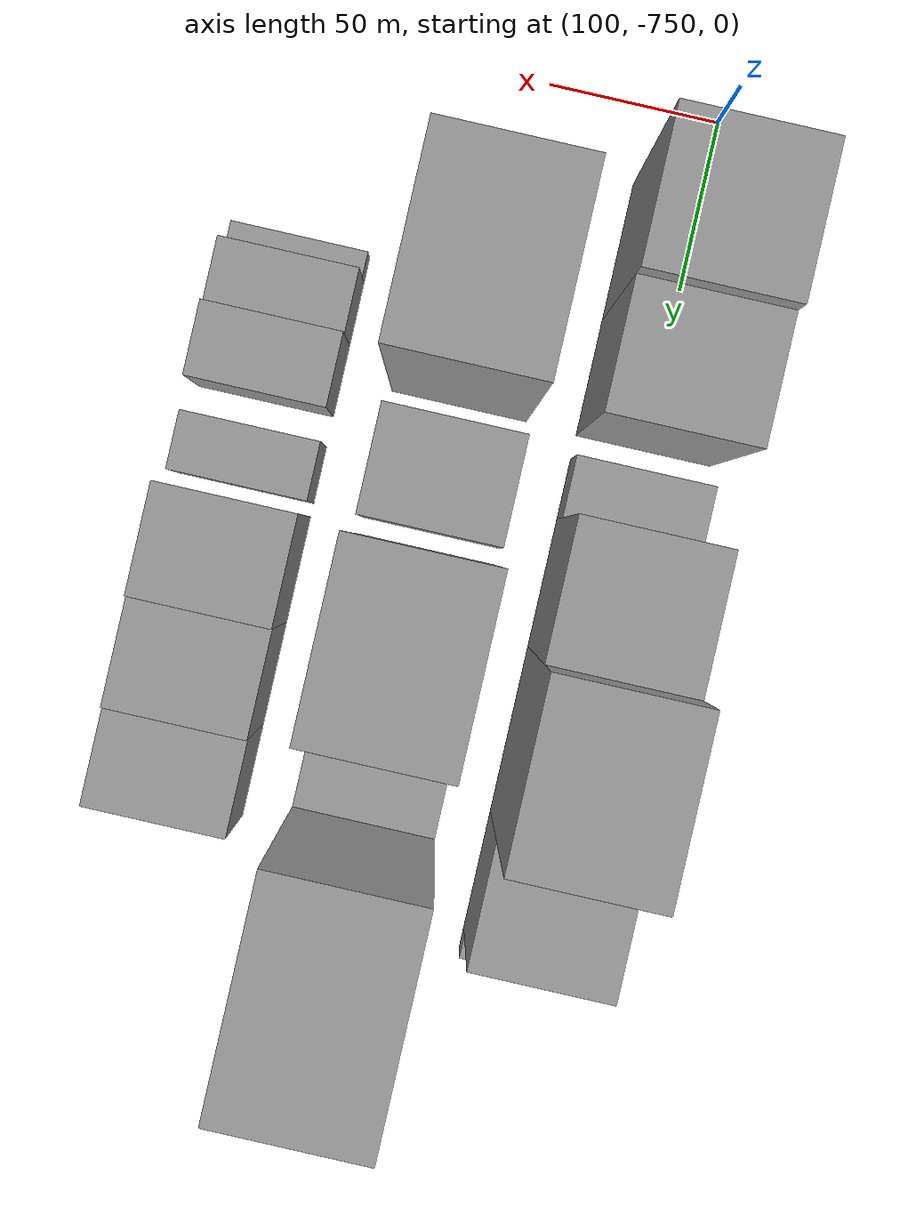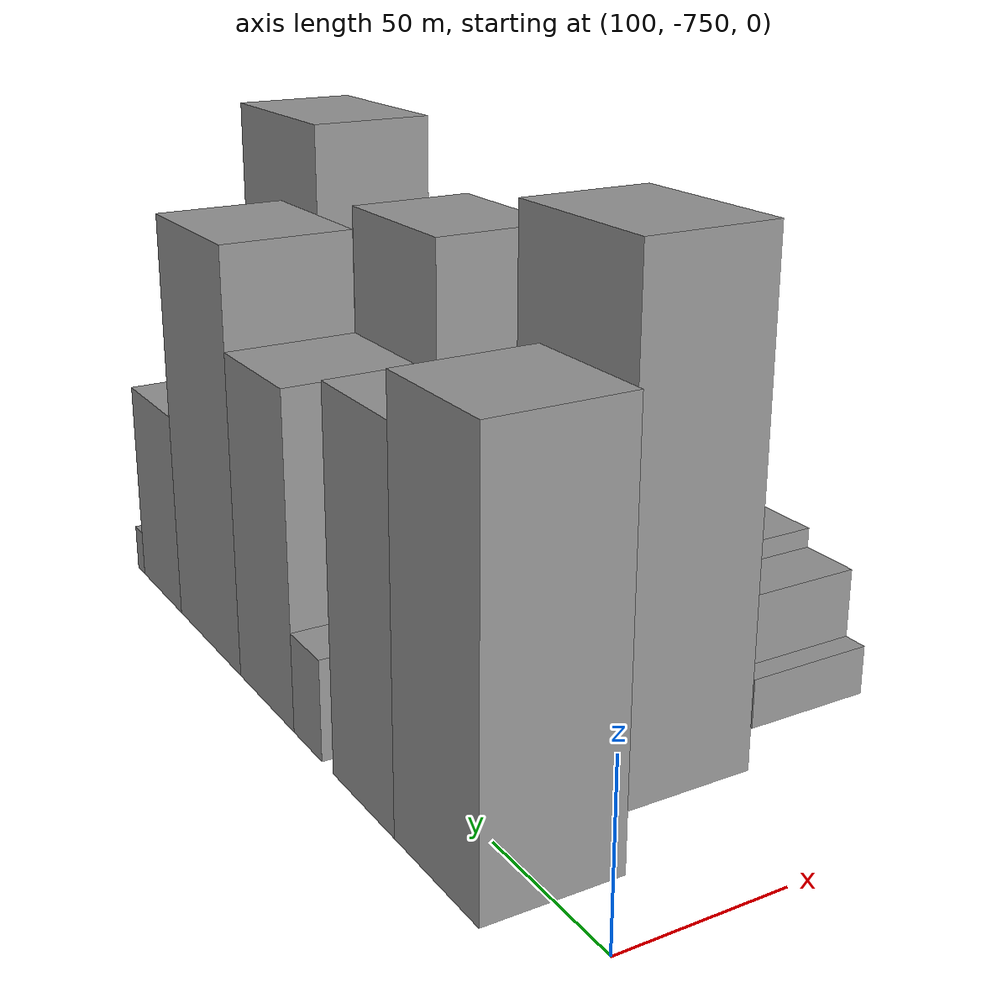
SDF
<sdf version="1.6">
 <world name="default">
  <model name="building_6">
   <static>1</static>
   <pose>100.0000 -706.8706 0 0.000000 0.000000 0.000000</pose>
   <link name="link">
    <pose>0 0 60.00 0 0 0</pose>
    <collision name="collision"><geometry><box><size>40.0000 40.6833 120.0000</size></box></geometry></collision>
    <visual name="visual">
     <cast_shadows>0</cast_shadows>
     <geometry><box><size>40.0000 40.6833 120.0000</size></box></geometry>
     <material>
      <script>
       <uri>model://grey_wall/materials/scripts</uri>
       <uri>model://grey_wall/materials/textures</uri>
       <name>vrc/grey_wall</name>
      </script>
     </material>
    </visual>
   </link>
  </model>
  <model name="building_7">
   <static>1</static>
   <pose>100.0000 -669.3736 0 0.000000 0.000000 0.000000</pose>
   <link name="link">
    <pose>0 0 54.00 0 0 0</pose>
    <collision name="collision"><geometry><box><size>40.0000 34.3107 108.0000</size></box></geometry></collision>
    <visual name="visual">
     <cast_shadows>0</cast_shadows>
     <geometry><box><size>40.0000 34.3107 108.0000</size></box></geometry>
     <material>
      <script>
       <uri>model://grey_wall/materials/scripts</uri>
       <uri>model://grey_wall/materials/textures</uri>
       <name>vrc/grey_wall</name>
      </script>
     </material>
    </visual>
   </link>
  </model>
  <model name="building_8">
   <static>1</static>
   <pose>100.0000 -636.2702 0 0.000000 0.000000 0.000000</pose>
   <link name="link">
    <pose>0 0 15.00 0 0 0</pose>
    <collision name="collision"><geometry><box><size>40.0000 17.8961 30.0000</size></box></geometry></collision>
    <visual name="visual">
     <cast_shadows>0</cast_shadows>
     <geometry><box><size>40.0000 17.8961 30.0000</size></box></geometry>
     <material>
      <script>
       <uri>model://grey_wall/materials/scripts</uri>
       <uri>model://grey_wall/materials/textures</uri>
       <name>vrc/grey_wall</name>
      </script>
     </material>
    </visual>
   </link>
  </model>
  <model name="building_9">
   <static>1</static>
   <pose>100.0000 -608.3308 0 0.000000 0.000000 0.000000</pose>
   <link name="link">
    <pose>0 0 49.50 0 0 0</pose>
    <collision name="collision"><geometry><box><size>40.0000 37.9828 99.0000</size></box></geometry></collision>
    <visual name="visual">
     <cast_shadows>0</cast_shadows>
     <geometry><box><size>40.0000 37.9828 99.0000</size></box></geometry>
     <material>
      <script>
       <uri>model://grey_wall/materials/scripts</uri>
       <uri>model://grey_wall/materials/textures</uri>
       <name>vrc/grey_wall</name>
      </script>
     </material>
    </visual>
   </link>
  </model>
  <model name="building_10">
   <static>1</static>
   <pose>100.0000 -564.8110 0 0.000000 0.000000 0.000000</pose>
   <link name="link">
    <pose>0 0 64.50 0 0 0</pose>
    <collision name="collision"><geometry><box><size>40.0000 49.0566 129.0000</size></box></geometry></collision>
    <visual name="visual">
     <cast_shadows>0</cast_shadows>
     <geometry><box><size>40.0000 49.0566 129.0000</size></box></geometry>
     <material>
      <script>
       <uri>model://grey_wall/materials/scripts</uri>
       <uri>model://grey_wall/materials/textures</uri>
       <name>vrc/grey_wall</name>
      </script>
     </material>
    </visual>
   </link>
  </model>
  <model name="building_11">
   <static>1</static>
   <pose>100.0000 -522.8682 0 0.000000 0.000000 0.000000</pose>
   <link name="link">
    <pose>0 0 33.00 0 0 0</pose>
    <collision name="collision"><geometry><box><size>40.0000 34.8290 66.0000</size></box></geometry></collision>
    <visual name="visual">
     <cast_shadows>0</cast_shadows>
     <geometry><box><size>40.0000 34.8290 66.0000</size></box></geometry>
     <material>
      <script>
       <uri>model://grey_wall/materials/scripts</uri>
       <uri>model://grey_wall/materials/textures</uri>
       <name>vrc/grey_wall</name>
      </script>
     </material>
    </visual>
   </link>
  </model>
  <model name="building_12">
   <static>1</static>
   <pose>100.0000 -502.3268 0 0.000000 0.000000 0.000000</pose>
   <link name="link">
    <pose>0 0 7.50 0 0 0</pose>
    <collision name="collision"><geometry><box><size>40.0000 6.2540 15.0000</size></box></geometry></collision>
    <visual name="visual">
     <cast_shadows>0</cast_shadows>
     <geometry><box><size>40.0000 6.2540 15.0000</size></box></geometry>
     <material>
      <script>
       <uri>model://grey_wall/materials/scripts</uri>
       <uri>model://grey_wall/materials/textures</uri>
       <name>vrc/grey_wall</name>
      </script>
     </material>
    </visual>
   </link>
  </model>
  <model name="building_55">
   <static>1</static>
   <pose>155.0000 -679.1869 0 0.000000 0.000000 0.000000</pose>
   <link name="link">
    <pose>0 0 73.50 0 0 0</pose>
    <collision name="collision"><geometry><box><size>40.0000 52.4989 147.0000</size></box></geometry></collision>
    <visual name="visual">
     <cast_shadows>0</cast_shadows>
     <geometry><box><size>40.0000 52.4989 147.0000</size></box></geometry>
     <material>
      <script>
       <uri>model://grey_wall/materials/scripts</uri>
       <uri>model://grey_wall/materials/textures</uri>
       <name>vrc/grey_wall</name>
      </script>
     </material>
    </visual>
   </link>
  </model>
  <model name="building_56">
   <static>1</static>
   <pose>155.0000 -630.6024 0 0.000000 0.000000 0.000000</pose>
   <link name="link">
    <pose>0 0 30.00 0 0 0</pose>
    <collision name="collision"><geometry><box><size>40.0000 30.6701 60.0000</size></box></geometry></collision>
    <visual name="visual">
     <cast_shadows>0</cast_shadows>
     <geometry><box><size>40.0000 30.6701 60.0000</size></box></geometry>
     <material>
      <script>
       <uri>model://grey_wall/materials/scripts</uri>
       <uri>model://grey_wall/materials/textures</uri>
       <name>vrc/grey_wall</name>
      </script>
     </material>
    </visual>
   </link>
  </model>
  <model name="building_57">
   <static>1</static>
   <pose>155.0000 -584.4768 0 0.000000 0.000000 0.000000</pose>
   <link name="link">
    <pose>0 0 64.50 0 0 0</pose>
    <collision name="collision"><geometry><box><size>40.0000 51.5812 129.0000</size></box></geometry></collision>
    <visual name="visual">
     <cast_shadows>0</cast_shadows>
     <geometry><box><size>40.0000 51.5812 129.0000</size></box></geometry>
     <material>
      <script>
       <uri>model://grey_wall/materials/scripts</uri>
       <uri>model://grey_wall/materials/textures</uri>
       <name>vrc/grey_wall</name>
      </script>
     </material>
    </visual>
   </link>
  </model>
  <model name="building_58">
   <static>1</static>
   <pose>155.0000 -544.0076 0 0.000000 0.000000 0.000000</pose>
   <link name="link">
    <pose>0 0 18.00 0 0 0</pose>
    <collision name="collision"><geometry><box><size>40.0000 21.3573 36.0000</size></box></geometry></collision>
    <visual name="visual">
     <cast_shadows>0</cast_shadows>
     <geometry><box><size>40.0000 21.3573 36.0000</size></box></geometry>
     <material>
      <script>
       <uri>model://grey_wall/materials/scripts</uri>
       <uri>model://grey_wall/materials/textures</uri>
       <name>vrc/grey_wall</name>
      </script>
     </material>
    </visual>
   </link>
  </model>
  <model name="building_59">
   <static>1</static>
   <pose>155.0000 -503.9129 0 0.000000 0.000000 0.000000</pose>
   <link name="link">
    <pose>0 0 75.00 0 0 0</pose>
    <collision name="collision"><geometry><box><size>40.0000 58.8321 150.0000</size></box></geometry></collision>
    <visual name="visual">
     <cast_shadows>0</cast_shadows>
     <geometry><box><size>40.0000 58.8321 150.0000</size></box></geometry>
     <material>
      <script>
       <uri>model://grey_wall/materials/scripts</uri>
       <uri>model://grey_wall/materials/textures</uri>
       <name>vrc/grey_wall</name>
      </script>
     </material>
    </visual>
   </link>
  </model>
  <model name="building_106">
   <static>1</static>
   <pose>210.0000 -685.3286 0 0.000000 0.000000 0.000000</pose>
   <link name="link">
    <pose>0 0 7.50 0 0 0</pose>
    <collision name="collision"><geometry><box><size>40.0000 7.4375 15.0000</size></box></geometry></collision>
    <visual name="visual">
     <cast_shadows>0</cast_shadows>
     <geometry><box><size>40.0000 7.4375 15.0000</size></box></geometry>
     <material>
      <script>
       <uri>model://grey_wall/materials/scripts</uri>
       <uri>model://grey_wall/materials/textures</uri>
       <name>vrc/grey_wall</name>
      </script>
     </material>
    </visual>
   </link>
  </model>
  <model name="building_107">
   <static>1</static>
   <pose>210.0000 -672.3068 0 0.000000 0.000000 0.000000</pose>
   <link name="link">
    <pose>0 0 18.00 0 0 0</pose>
    <collision name="collision"><geometry><box><size>40.0000 18.6061 36.0000</size></box></geometry></collision>
    <visual name="visual">
     <cast_shadows>0</cast_shadows>
     <geometry><box><size>40.0000 18.6061 36.0000</size></box></geometry>
     <material>
      <script>
       <uri>model://grey_wall/materials/scripts</uri>
       <uri>model://grey_wall/materials/textures</uri>
       <name>vrc/grey_wall</name>
      </script>
     </material>
    </visual>
   </link>
  </model>
  <model name="building_108">
   <static>1</static>
   <pose>210.0000 -652.4063 0 0.000000 0.000000 0.000000</pose>
   <link name="link">
    <pose>0 0 21.00 0 0 0</pose>
    <collision name="collision"><geometry><box><size>40.0000 21.1949 42.0000</size></box></geometry></collision>
    <visual name="visual">
     <cast_shadows>0</cast_shadows>
     <geometry><box><size>40.0000 21.1949 42.0000</size></box></geometry>
     <material>
      <script>
       <uri>model://grey_wall/materials/scripts</uri>
       <uri>model://grey_wall/materials/textures</uri>
       <name>vrc/grey_wall</name>
      </script>
     </material>
    </visual>
   </link>
  </model>
  <model name="building_109">
   <static>1</static>
   <pose>210.0000 -624.3836 0 0.000000 0.000000 0.000000</pose>
   <link name="link">
    <pose>0 0 16.50 0 0 0</pose>
    <collision name="collision"><geometry><box><size>40.0000 16.8505 33.0000</size></box></geometry></collision>
    <visual name="visual">
     <cast_shadows>0</cast_shadows>
     <geometry><box><size>40.0000 16.8505 33.0000</size></box></geometry>
     <material>
      <script>
       <uri>model://grey_wall/materials/scripts</uri>
       <uri>model://grey_wall/materials/textures</uri>
       <name>vrc/grey_wall</name>
      </script>
     </material>
    </visual>
   </link>
  </model>
  <model name="building_110">
   <static>1</static>
   <pose>210.0000 -596.2396 0 0.000000 0.000000 0.000000</pose>
   <link name="link">
    <pose>0 0 28.50 0 0 0</pose>
    <collision name="collision"><geometry><box><size>40.0000 31.4375 57.0000</size></box></geometry></collision>
    <visual name="visual">
     <cast_shadows>0</cast_shadows>
     <geometry><box><size>40.0000 31.4375 57.0000</size></box></geometry>
     <material>
      <script>
       <uri>model://grey_wall/materials/scripts</uri>
       <uri>model://grey_wall/materials/textures</uri>
       <name>vrc/grey_wall</name>
      </script>
     </material>
    </visual>
   </link>
  </model>
  <model name="building_111">
   <static>1</static>
   <pose>210.0000 -565.2725 0 0.000000 0.000000 0.000000</pose>
   <link name="link">
    <pose>0 0 27.00 0 0 0</pose>
    <collision name="collision"><geometry><box><size>40.0000 30.4966 54.0000</size></box></geometry></collision>
    <visual name="visual">
     <cast_shadows>0</cast_shadows>
     <geometry><box><size>40.0000 30.4966 54.0000</size></box></geometry>
     <material>
      <script>
       <uri>model://grey_wall/materials/scripts</uri>
       <uri>model://grey_wall/materials/textures</uri>
       <name>vrc/grey_wall</name>
      </script>
     </material>
    </visual>
   </link>
  </model>
  <model name="building_112">
   <static>1</static>
   <pose>210.0000 -536.3951 0 0.000000 0.000000 0.000000</pose>
   <link name="link">
    <pose>0 0 25.50 0 0 0</pose>
    <collision name="collision"><geometry><box><size>40.0000 27.2583 51.0000</size></box></geometry></collision>
    <visual name="visual">
     <cast_shadows>0</cast_shadows>
     <geometry><box><size>40.0000 27.2583 51.0000</size></box></geometry>
     <material>
      <script>
       <uri>model://grey_wall/materials/scripts</uri>
       <uri>model://grey_wall/materials/textures</uri>
       <name>vrc/grey_wall</name>
      </script>
     </material>
    </visual>
   </link>
  </model>
 </world>
</sdf>
